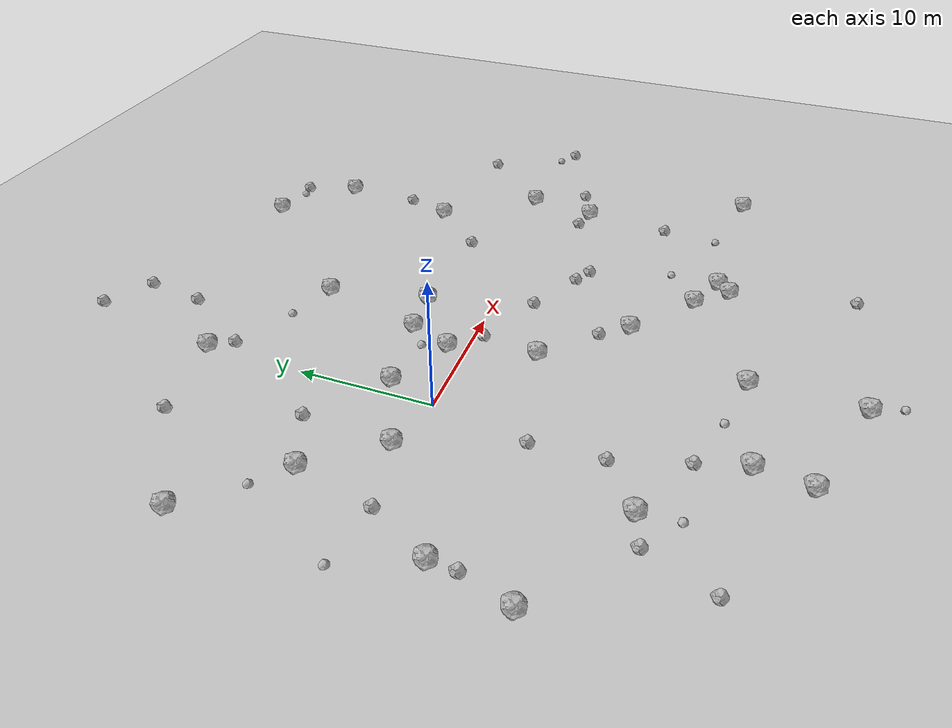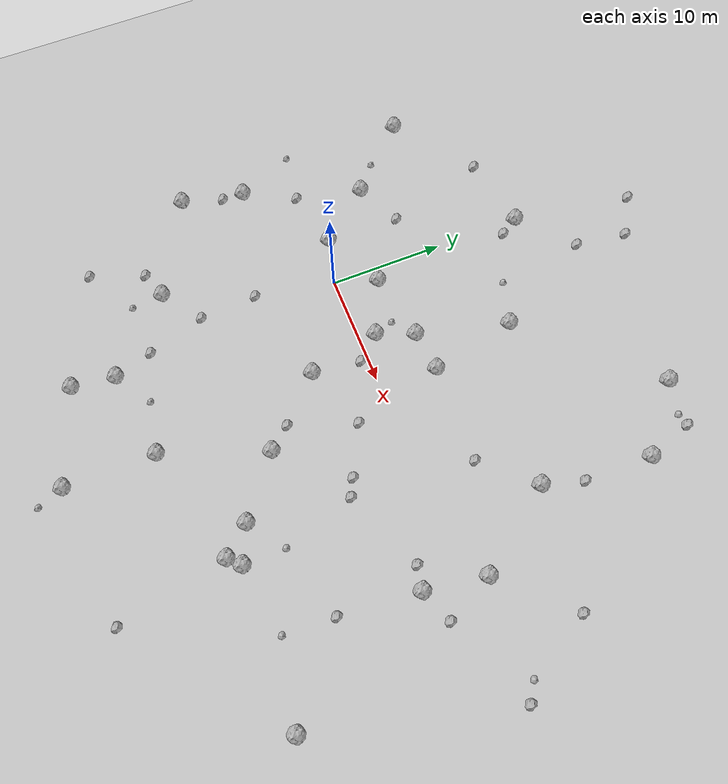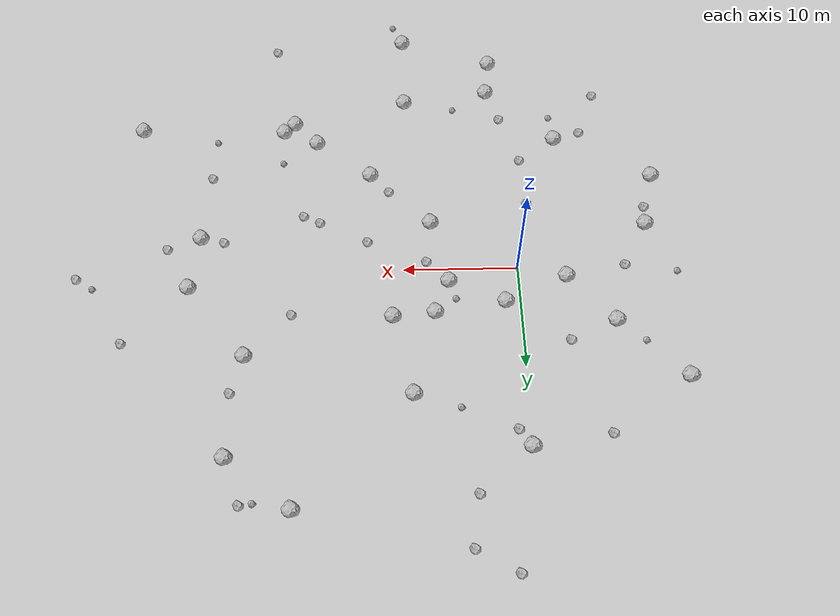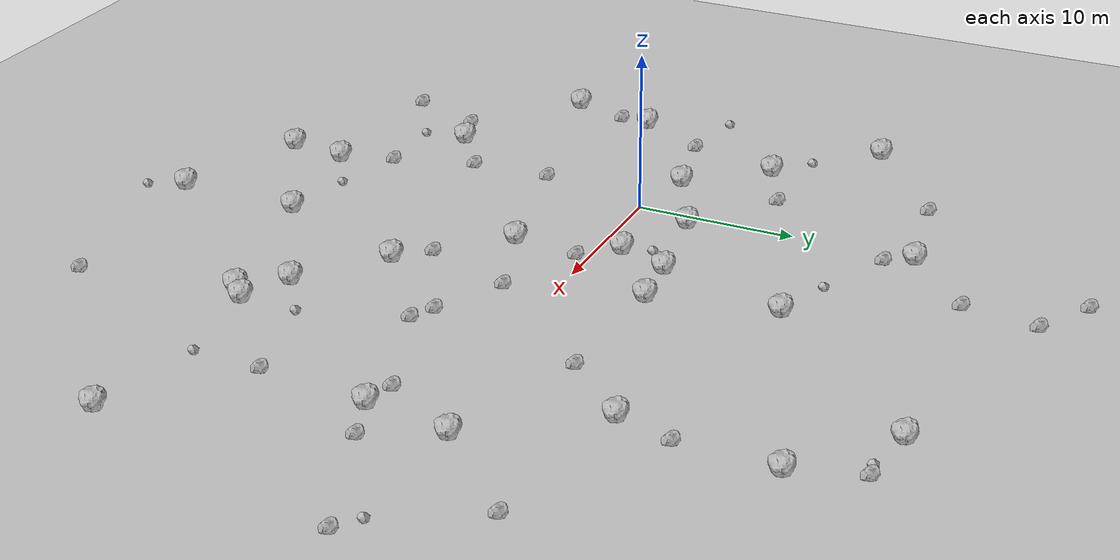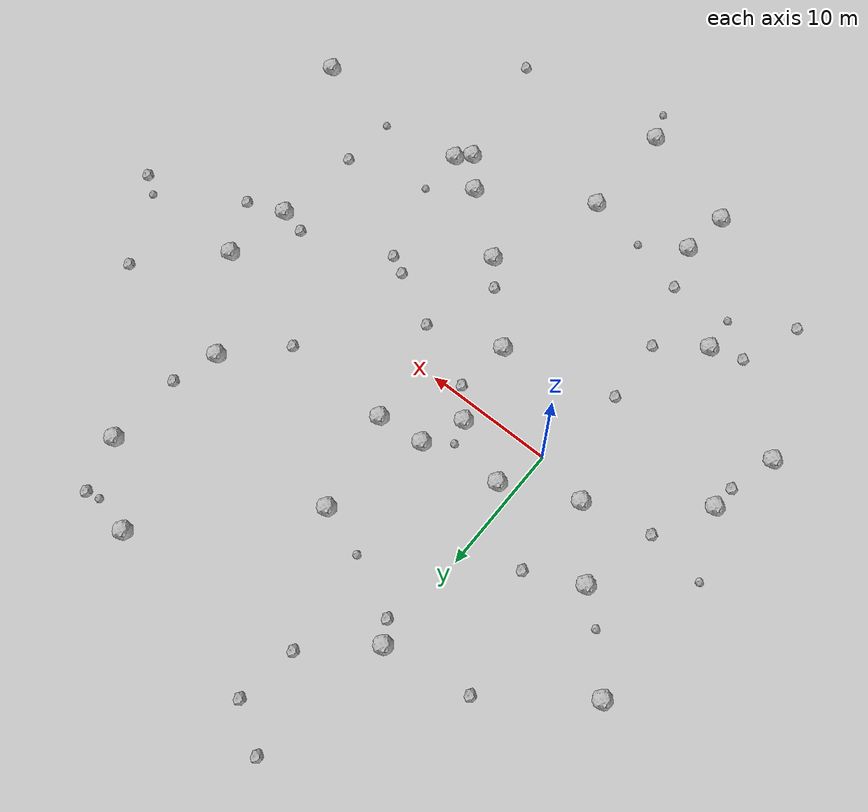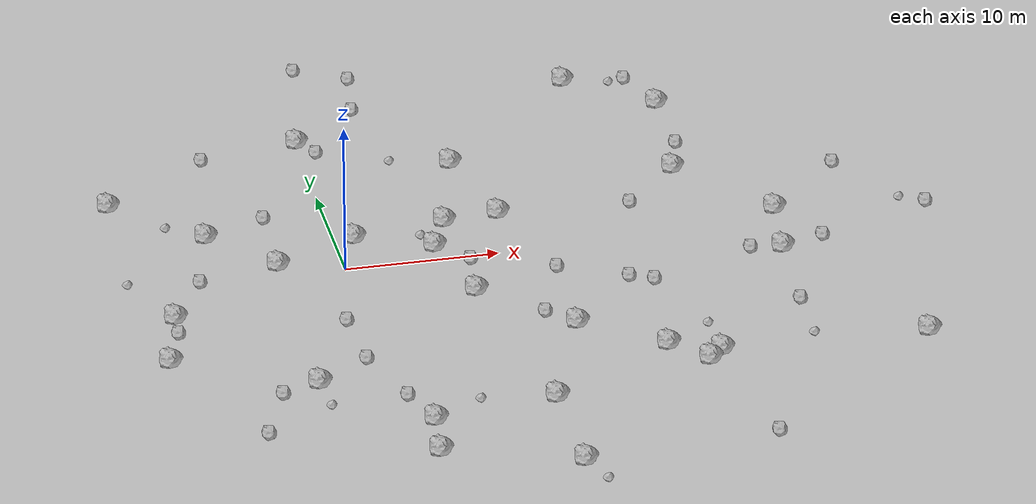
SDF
<sdf version="1.6">
 <world name="default">
  <include><uri>model://custom_ground</uri></include>
  <include><uri>model://sun</uri></include>
  <model name="rock1_0_0">
   <include><uri>model://rock1</uri><pose>9.448979469801706 -19.343021244370924 0.5 0 0 0</pose></include>
  </model>
  <model name="rock1_0_1">
   <include><uri>model://rock1</uri><pose>-4.434018164329796 -14.554310356891143 0.5 0 0 0</pose></include>
  </model>
  <model name="rock1_0_2">
   <include><uri>model://rock1</uri><pose>12.777897761383656 -10.472782780882966 0.5 0 0 0</pose></include>
  </model>
  <model name="rock1_0_3">
   <include><uri>model://rock1</uri><pose>27.933578570801686 -3.4902449042114334 0.5 0 0 0</pose></include>
  </model>
  <model name="rock1_0_4">
   <include><uri>model://rock1</uri><pose>-13.503053385169414 11.293394596494451 0.5 0 0 0</pose></include>
  </model>
  <model name="rock1_0_5">
   <include><uri>model://rock1</uri><pose>9.508447347933139 12.647558570382444 0.5 0 0 0</pose></include>
  </model>
  <model name="rock1_0_6">
   <include><uri>model://rock1</uri><pose>1.3028774116627773 3.640062521614901 0.5 0 0 0</pose></include>
  </model>
  <model name="rock1_0_7">
   <include><uri>model://rock1</uri><pose>28.773990198325556 1.8024056180203445 0.5 0 0 0</pose></include>
  </model>
  <model name="rock1_0_8">
   <include><uri>model://rock1</uri><pose>11.07136475963063 5.042677098354211 0.5 0 0 0</pose></include>
  </model>
  <model name="rock1_0_9">
   <include><uri>model://rock1</uri><pose>19.467665055672654 22.871719026562502 0.5 0 0 0</pose></include>
  </model>
  <model name="rock1_0_10">
   <include><uri>model://rock1</uri><pose>19.800107300917936 -16.76744211932853 0.5 0 0 0</pose></include>
  </model>
  <model name="rock1_0_11">
   <include><uri>model://rock1</uri><pose>7.429511196122508 4.65943302648801 0.5 0 0 0</pose></include>
  </model>
  <model name="rock1_0_12">
   <include><uri>model://rock1</uri><pose>9.403424226549284 -27.239508349058646 0.5 0 0 0</pose></include>
  </model>
  <model name="rock1_0_13">
   <include><uri>model://rock1</uri><pose>1.604297174130835 -20.518452971258327 0.5 0 0 0</pose></include>
  </model>
  <model name="rock1_0_14">
   <include><uri>model://rock1</uri><pose>23.675997567761016 8.810422304253066 0.5 0 0 0</pose></include>
  </model>
  <model name="rock1_0_15">
   <include><uri>model://rock1</uri><pose>-12.967196995197304 -10.012628839097072 0.5 0 0 0</pose></include>
  </model>
  <model name="rock1_0_16">
   <include><uri>model://rock1</uri><pose>6.127649286329948 1.4362429914853756 0.5 0 0 0</pose></include>
  </model>
  <model name="rock1_0_17">
   <include><uri>model://rock1</uri><pose>1.120703687442962 -24.28224147700317 0.5 0 0 0</pose></include>
  </model>
  <model name="rock1_0_18">
   <include><uri>model://rock1</uri><pose>-8.030001528610963 5.71334484097914 0.5 0 0 0</pose></include>
  </model>
  <model name="rock1_0_19">
   <include><uri>model://rock1</uri><pose>17.69391748162395 -14.383520134248073 0.5 0 0 0</pose></include>
  </model>
  <model name="rock1_0_20">
   <include><uri>model://rock1</uri><pose>0.14456255416076758 17.610642472481004 0.5 0 0 0</pose></include>
  </model>
  <model name="rock1_0_21">
   <include><uri>model://rock1</uri><pose>-11.732966740528529 -4.515447297036999 0.5 0 0 0</pose></include>
  </model>
  <model name="rock1_0_22">
   <include><uri>model://rock1</uri><pose>-4.161983485137881 1.058054783213617 0.5 0 0 0</pose></include>
  </model>
  <model name="rock1_0_23">
   <include><uri>model://rock1</uri><pose>20.79106587909837 -15.771740925045458 0.5 0 0 0</pose></include>
  </model>
  <model name="rock1_0_24">
   <include><uri>model://rock1</uri><pose>34.0531641386057 -16.166427706315115 0.5 0 0 0</pose></include>
  </model>
  <model name="rock1_0_25">
   <include><uri>model://rock1</uri><pose>7.490609495084804 -4.925991211970999 0.5 0 0 0</pose></include>
  </model>
  <model name="rock1_0_26">
   <include><uri>model://rock1</uri><pose>24.892817028184638 18.271191433835853 0.5 0 0 0</pose></include>
  </model>
  <model name="rock2_0_0">
   <include><uri>model://rock2</uri><pose>17.365885084460608 -5.086413257825132 0.3 0 0 0</pose></include>
  </model>
  <model name="rock2_0_1">
   <include><uri>model://rock2</uri><pose>-11.901473323353251 -6.426137141254429 0.3 0 0 0</pose></include>
  </model>
  <model name="rock2_0_2">
   <include><uri>model://rock2</uri><pose>0.5114922577158438 -17.135516795614976 0.3 0 0 0</pose></include>
  </model>
  <model name="rock2_0_3">
   <include><uri>model://rock2</uri><pose>7.991544347997866 -0.6631534520618843 0.3 0 0 0</pose></include>
  </model>
  <model name="rock2_0_4">
   <include><uri>model://rock2</uri><pose>-6.915222607623797 -15.353517363011353 0.3 0 0 0</pose></include>
  </model>
  <model name="rock2_0_5">
   <include><uri>model://rock2</uri><pose>38.591558092992706 0.7148452844662643 0.3 0 0 0</pose></include>
  </model>
  <model name="rock2_0_6">
   <include><uri>model://rock2</uri><pose>21.65528033153877 -26.242842507358585 0.3 0 0 0</pose></include>
  </model>
  <model name="rock2_0_7">
   <include><uri>model://rock2</uri><pose>23.567815344443105 22.404274511093625 0.3 0 0 0</pose></include>
  </model>
  <model name="rock2_0_8">
   <include><uri>model://rock2</uri><pose>27.221587549282937 -10.342193618498094 0.3 0 0 0</pose></include>
  </model>
  <model name="rock2_0_9">
   <include><uri>model://rock2</uri><pose>-1.0421759265261308 -12.050262009180823 0.3 0 0 0</pose></include>
  </model>
  <model name="rock2_0_10">
   <include><uri>model://rock2</uri><pose>30.831276049990322 -2.3605409832194155 0.3 0 0 0</pose></include>
  </model>
  <model name="rock2_0_11">
   <include><uri>model://rock2</uri><pose>4.624436938557523 21.691584851252045 0.3 0 0 0</pose></include>
  </model>
  <model name="rock2_0_12">
   <include><uri>model://rock2</uri><pose>25.86653116396586 -3.028961071903268 0.3 0 0 0</pose></include>
  </model>
  <model name="rock2_0_13">
   <include><uri>model://rock2</uri><pose>19.751478434464545 4.7232086297107045 0.3 0 0 0</pose></include>
  </model>
  <model name="rock2_0_14">
   <include><uri>model://rock2</uri><pose>13.139137756913335 -2.8974484981684228 0.3 0 0 0</pose></include>
  </model>
  <model name="rock2_0_15">
   <include><uri>model://rock2</uri><pose>-3.9719490051232462 7.609835823463676 0.3 0 0 0</pose></include>
  </model>
  <model name="rock2_0_16">
   <include><uri>model://rock2</uri><pose>5.274828786451341 26.288294022824026 0.3 0 0 0</pose></include>
  </model>
  <model name="rock2_0_17">
   <include><uri>model://rock2</uri><pose>-6.507646353588745 16.532798415000897 0.3 0 0 0</pose></include>
  </model>
  <model name="rock2_0_18">
   <include><uri>model://rock2</uri><pose>1.107687609307952 16.034568069008785 0.3 0 0 0</pose></include>
  </model>
  <model name="rock2_0_19">
   <include><uri>model://rock2</uri><pose>-8.657049335730465 -20.000032153478877 0.3 0 0 0</pose></include>
  </model>
  <model name="rock2_0_20">
   <include><uri>model://rock2</uri><pose>1.8840054501971473 28.323882314588822 0.3 0 0 0</pose></include>
  </model>
  <model name="rock2_0_21">
   <include><uri>model://rock2</uri><pose>11.11048566473362 -8.52596243145953 0.3 0 0 0</pose></include>
  </model>
  <model name="rock2_0_22">
   <include><uri>model://rock2</uri><pose>24.70291910590582 12.345118563392475 0.3 0 0 0</pose></include>
  </model>
  <model name="rock2_0_23">
   <include><uri>model://rock2</uri><pose>-9.449370035977577 -0.08969484744876866 0.3 0 0 0</pose></include>
  </model>
  <model name="rock2_0_24">
   <include><uri>model://rock2</uri><pose>-1.3089622416304216 -6.990050148239071 0.3 0 0 0</pose></include>
  </model>
  <model name="rock2_0_25">
   <include><uri>model://rock2</uri><pose>18.83067157609584 -5.838985639904511 0.3 0 0 0</pose></include>
  </model>
  <model name="rock2_0_26">
   <include><uri>model://rock2</uri><pose>34.11263183639121 7.379046994682206 0.3 0 0 0</pose></include>
  </model>
  <model name="rock3_0_0">
   <include><uri>model://rock3</uri><pose>20.755563061885447 -12.146216181200554 0.2 0 0 0</pose></include>
  </model>
  <model name="rock3_0_1">
   <include><uri>model://rock3</uri><pose>5.623046289705293 13.877157420778488 0.2 0 0 0</pose></include>
  </model>
  <model name="rock3_0_2">
   <include><uri>model://rock3</uri><pose>-14.004531066234476 0.5632900333179869 0.2 0 0 0</pose></include>
  </model>
  <model name="rock3_0_3">
   <include><uri>model://rock3</uri><pose>37.07775984742638 1.6949781171616571 0.2 0 0 0</pose></include>
  </model>
  <model name="rock3_0_4">
   <include><uri>model://rock3</uri><pose>4.802889656692269 -18.48818948893886 0.2 0 0 0</pose></include>
  </model>
  <model name="rock3_0_5">
   <include><uri>model://rock3</uri><pose>5.520423981477375 3.1950348857218813 0.2 0 0 0</pose></include>
  </model>
  <model name="rock3_0_6">
   <include><uri>model://rock3</uri><pose>-10.381536118190116 7.674178834108176 0.2 0 0 0</pose></include>
  </model>
  <model name="rock3_0_7">
   <include><uri>model://rock3</uri><pose>26.955543329913176 -14.770792795809287 0.2 0 0 0</pose></include>
  </model>
  <model name="rock3_0_8">
   <include><uri>model://rock3</uri><pose>22.46745022921924 22.184832350033602 0.2 0 0 0</pose></include>
  </model>
  <model name="rock3_0_9">
   <include><uri>model://rock3</uri><pose>-4.268493617024662 -17.357554295411244 0.2 0 0 0</pose></include>
  </model>
  <model name="rock3_0_10">
   <include><uri>model://rock3</uri><pose>10.209850108511468 -29.549977321917577 0.2 0 0 0</pose></include>
  </model>
 </world>
</sdf>
